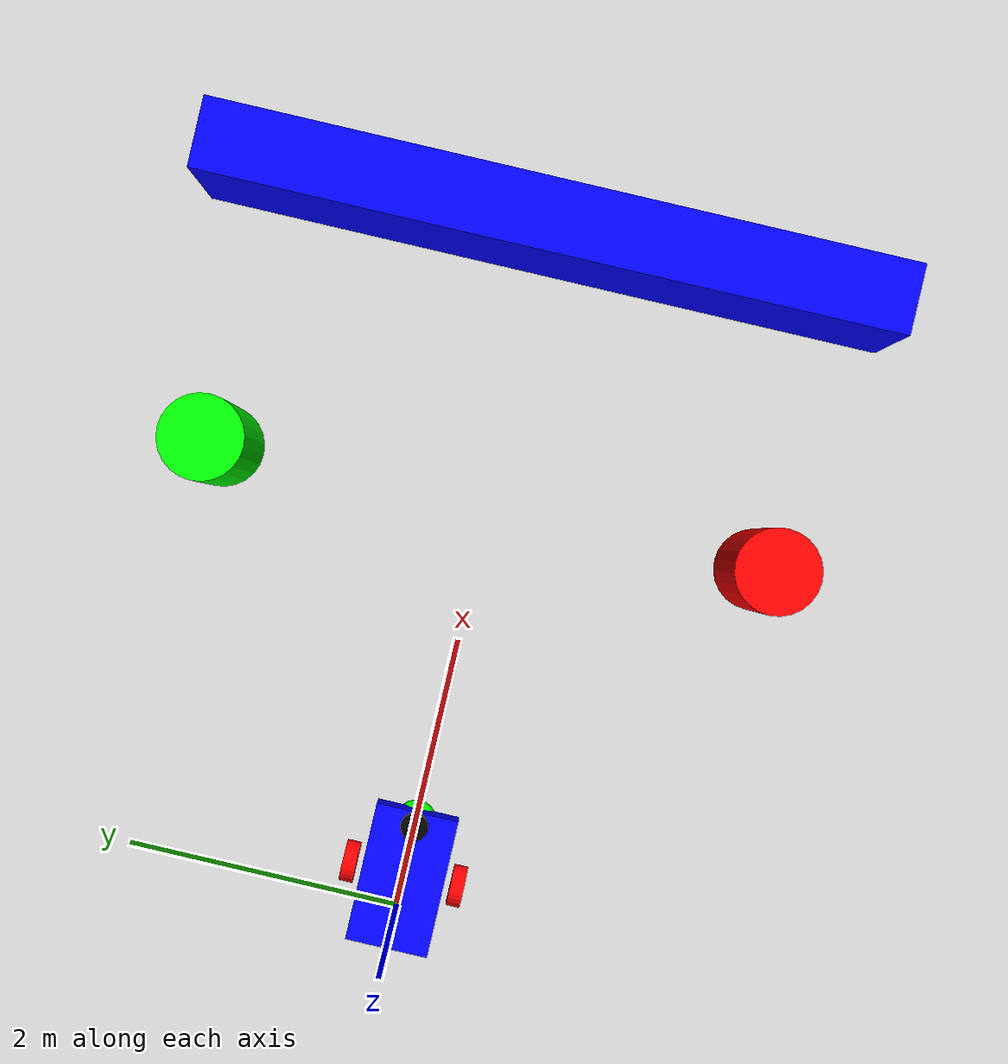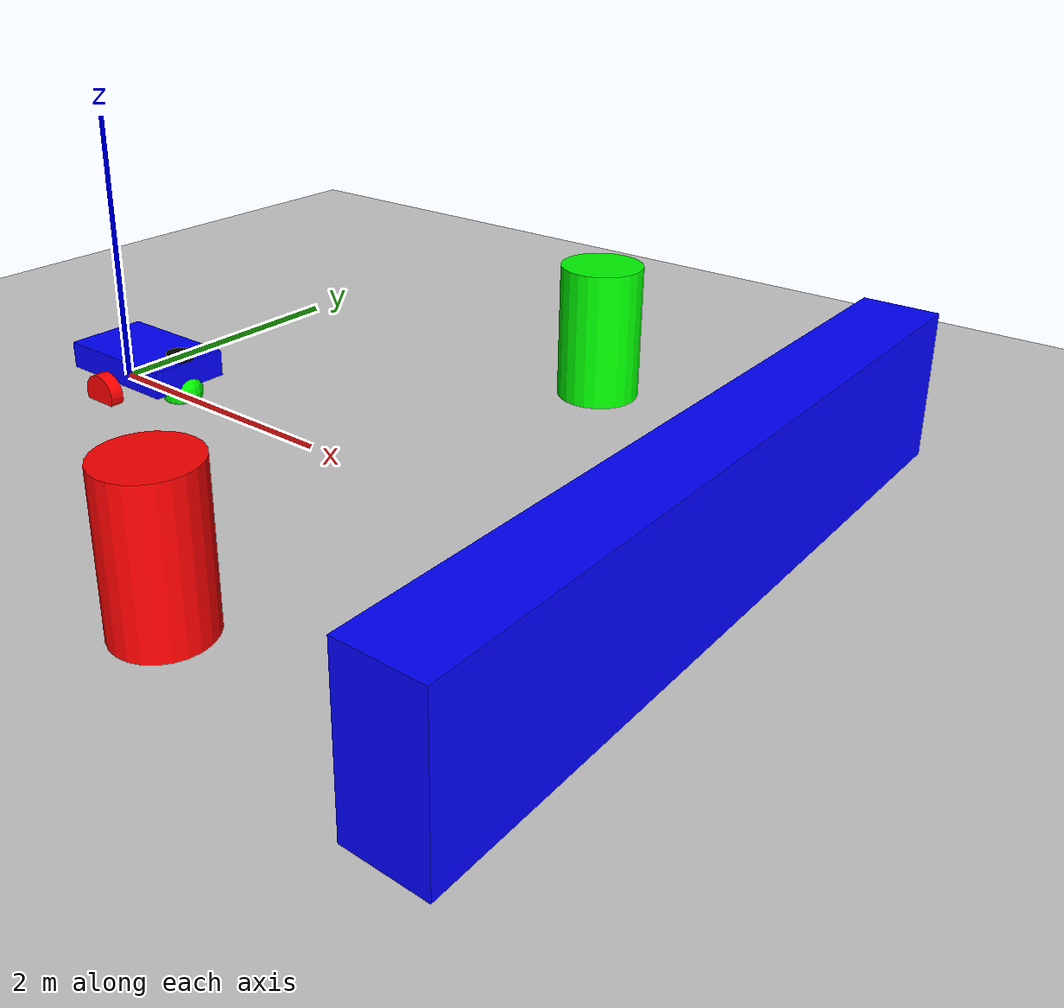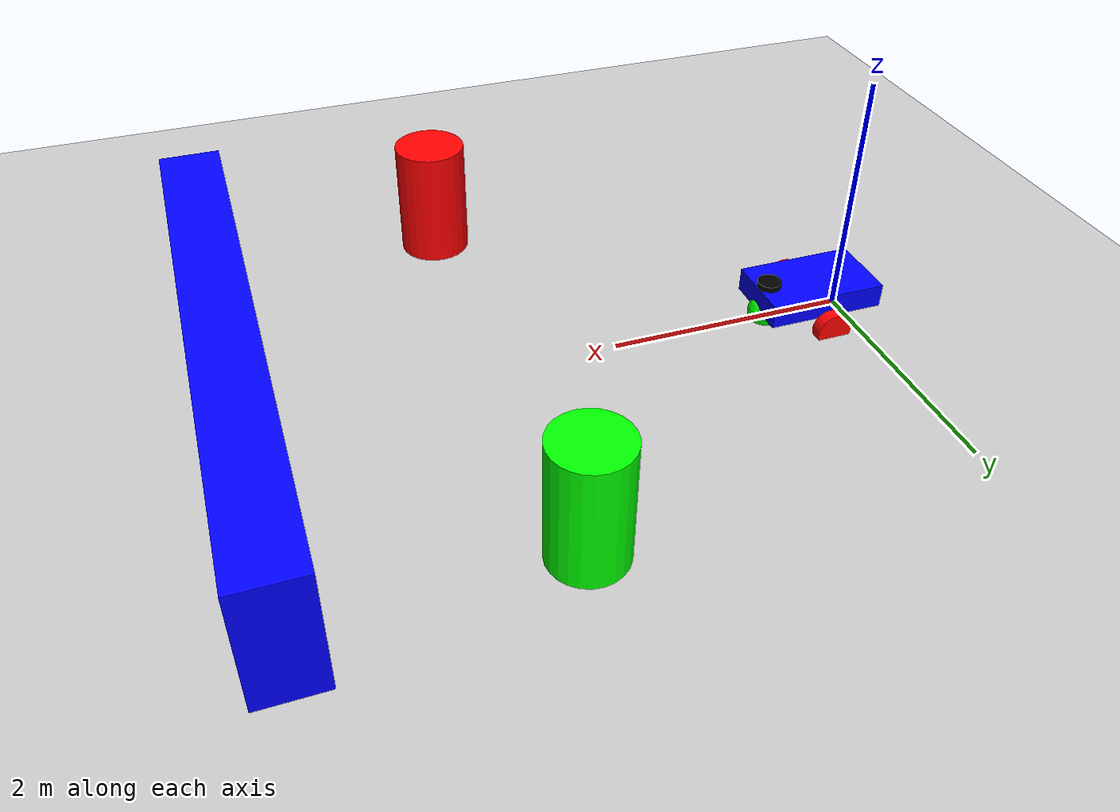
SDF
<?xml version="1.0"?>
<sdf version="1.10">
    <world name="car_world">
        <physics name="1ms" type="ignored">
            <max_step_size>0.001</max_step_size>
            <real_time_factor>1.0</real_time_factor>
        </physics>
        <plugin
            filename="gz-sim-physics-system"
            name="gz::sim::systems::Physics">
        </plugin>
        <plugin
            filename="gz-sim-user-commands-system"
            name="gz::sim::systems::UserCommands">
        </plugin>
        <plugin
            filename="gz-sim-scene-broadcaster-system"
            name="gz::sim::systems::SceneBroadcaster">
        </plugin>
        <plugin
            filename="gz-sim-imu-system"
            name="gz::sim::systems::Imu">
        </plugin>
        <plugin
            filename="gz-sim-sensors-system"
            name="gz::sim::systems::Sensors">
            <render_engine>ogre2</render_engine>
        </plugin>

        <light type="directional" name="sun">
            <cast_shadows>true</cast_shadows>
            <pose>0 0 10 0 0 0</pose>
            <diffuse>0.8 0.8 0.8 1</diffuse>
            <specular>0.2 0.2 0.2 1</specular>
            <attenuation>
                <range>1000</range>
                <constant>0.9</constant>
                <linear>0.01</linear>
                <quadratic>0.001</quadratic>
            </attenuation>
            <direction>-0.5 0.1 -0.9</direction>
        </light>

        <model name="ground_plane">
            <static>true</static>
            <link name="link">
                <collision name="collision">
                    <geometry>
                        <plane>
                            <normal>0 0 1</normal>
                        </plane>
                    </geometry>
                </collision>
                <visual name="visual">
                    <geometry>
                        <plane>
                            <normal>0 0 1</normal>
                            <size>100 100</size>
                        </plane>
                    </geometry>
                    <material>
                        <ambient>0.8 0.8 0.8 1</ambient>
                        <diffuse>0.8 0.8 0.8 1</diffuse>
                        <specular>0.8 0.8 0.8 1</specular>
                    </material>
                </visual>
            </link>
        </model>

        <model name='vehicle_blue' canonical_link='chassis'>
            <pose relative_to='world'>0 0 0 0 0 0</pose>
            <link name='chassis'>
                <pose relative_to='__model__'>0.25 0 0.2 0 0 0</pose>
                <inertial> <!--inertial
                    properties of the link mass, inertia matix-->
                    <mass>2.2879</mass>
                    <inertia>
                        <ixx>0.095329</ixx>
                        <ixy>0</ixy>
                        <ixz>0</ixz>
                        <iyy>0.381317</iyy>
                        <iyz>0</iyz>
                        <izz>0.476646</izz>
                    </inertia>
                </inertial>
                <visual name='visual'>
                    <geometry>
                        <box>
                            <size>1.0 0.6 0.2</size>
                        </box>
                    </geometry>
                    <!--let's
                    add color to our link-->
                    <material>
                        <ambient>0.0 0.0 1.0 1</ambient>
                        <diffuse>0.0 0.0 1.0 1</diffuse>
                        <specular>0.0 0.0 1.0 1</specular>
                    </material>
                </visual>
                <collision name='collision'>
                    <geometry>
                        <box>
                            <size>1.0 0.6 0.2</size>
                        </box>
                    </geometry>
                </collision>
                <sensor name="imu_sensor" type="imu">
                    <always_on>1</always_on>
                    <update_rate>1</update_rate>
                    <visualize>true</visualize>
                    <topic>imu</topic>
                </sensor>
            </link>

            <link name='left_wheel'>
                <pose relative_to="chassis">0 0.4 -0.15 -1.5707 0 0</pose>
                <inertial>
                    <mass>1</mass>
                    <inertia>
                        <ixx>0.043333</ixx>
                        <ixy>0</ixy>
                        <ixz>0</ixz>
                        <iyy>0.043333</iyy>
                        <iyz>0</iyz>
                        <izz>0.08</izz>
                    </inertia>
                </inertial>
                <visual name='visual'>
                    <geometry>
                        <cylinder>
                            <radius>0.15</radius>
                            <length>0.1</length>
                        </cylinder>
                    </geometry>
                    <material>
                        <ambient>1.0 0.0 0.0 1</ambient>
                        <diffuse>1.0 0.0 0.0 1</diffuse>
                        <specular>1.0 0.0 0.0 1</specular>
                    </material>
                </visual>
                <collision name='collision'>
                    <geometry>
                        <cylinder>
                            <radius>0.15</radius>
                            <length>0.1</length>
                        </cylinder>
                    </geometry>
                </collision>
            </link>

            <link name='right_wheel'>
                <pose relative_to="chassis">0 -0.4 -0.15 -1.5707 0 0</pose>
                <inertial>
                    <mass>1</mass>
                    <inertia>
                        <ixx>0.043333</ixx>
                        <ixy>0</ixy>
                        <ixz>0</ixz>
                        <iyy>0.043333</iyy>
                        <iyz>0</iyz>
                        <izz>0.08</izz>
                    </inertia>
                </inertial>
                <visual name='visual'>
                    <geometry>
                        <cylinder>
                            <radius>0.15</radius>
                            <length>0.1</length>
                        </cylinder>
                    </geometry>
                    <material>
                        <ambient>1.0 0.0 0.0 1</ambient>
                        <diffuse>1.0 0.0 0.0 1</diffuse>
                        <specular>1.0 0.0 0.0 1</specular>
                    </material>
                </visual>
                <collision name='collision'>
                    <geometry>
                        <cylinder>
                            <radius>0.15</radius>
                            <length>0.1</length>
                        </cylinder>
                    </geometry>
                </collision>
            </link>

            <frame name="front_caster_frame" attached_to='chassis'>
                <pose>0.4 0 -0.15 0 0 0</pose>
            </frame>

            <frame name="rear_caster_frame" attached_to='chassis'>
                <pose>-0.4 0 -0.15 0 0 0</pose>
            </frame>

            <frame name="lidar_frame" attached_to='chassis'>
                <pose>0.4 0 0.1 0 0 0</pose>
            </frame>

            <link name='lidar'>
                <pose relative_to='lidar_frame' />
                <inertial>
                    <mass>0.1</mass>
                    <inertia>
                        <ixx>0.000166667</ixx>
                        <ixy>0</ixy>
                        <ixz>0</ixz>
                        <iyy>0.000166667</iyy>
                        <iyz>0</iyz>
                        <izz>0.000166667</izz>
                    </inertia>
                </inertial>
                <visual name='visual'>
                    <geometry>
                        <cylinder>
                            <radius>0.1</radius>
                            <length>0.1</length>
                        </cylinder>
                    </geometry>
                    <material>
                        <ambient>0.0 0.0 0.0 1</ambient>
                        <diffuse>0.0 0.0 0.0 1</diffuse>
                        <specular>0.0 0.0 0.0 1</specular>
                    </material>
                </visual>
                <collision name='collision'>
                    <geometry>
                        <cylinder>
                            <radius>0.1</radius>
                            <length>0.1</length>
                        </cylinder>
                    </geometry>
                </collision>
                <sensor name='gpu_lidar' type='gpu_lidar'>
                    <pose relative_to='lidar_frame'>0 0 0 0 0 0</pose>
                    <topic>lidar</topic>
                    <update_rate>10</update_rate>
                    <frame_id>lidar_link</frame_id>
                    <ray>
                        <scan>
                            <horizontal>
                                <samples>640</samples>
                                <resolution>1</resolution>
                                <min_angle>-1.396263</min_angle>
                                <max_angle>1.396263</max_angle>
                            </horizontal>
                            <vertical>
                                <samples>1</samples>
                                <resolution>0.01</resolution>
                                <min_angle>0</min_angle>
                                <max_angle>0</max_angle>
                            </vertical>
                        </scan>
                        <range>
                            <min>0.08</min>
                            <max>10.0</max>
                            <resolution>0.01</resolution>
                        </range>
                    </ray>
                    <always_on>1</always_on>
                    <visualize>true</visualize>
                </sensor>
            </link>

            <link name='front_caster'>
                <pose relative_to='front_caster_frame' />
                <inertial>
                    <mass>1</mass>
                    <inertia>
                        <ixx>0.009</ixx>
                        <ixy>0</ixy>
                        <ixz>0</ixz>
                        <iyy>0.009</iyy>
                        <iyz>0</iyz>
                        <izz>0.009</izz>
                    </inertia>
                </inertial>
                <visual name='visual'>
                    <geometry>
                        <sphere>
                            <radius>0.15</radius>
                        </sphere>
                    </geometry>
                    <material>
                        <ambient>0.0 1 0.0 1</ambient>
                        <diffuse>0.0 1 0.0 1</diffuse>
                        <specular>0.0 1 0.0 1</specular>
                    </material>
                </visual>
                <collision name='collision'>
                    <geometry>
                        <sphere>
                            <radius>0.15</radius>
                        </sphere>
                    </geometry>
                </collision>
            </link>

            <link name='rear_caster'>
                <pose relative_to='rear_caster_frame' />
                <inertial>
                    <mass>1</mass>
                    <inertia>
                        <ixx>0.009</ixx>
                        <ixy>0</ixy>
                        <ixz>0</ixz>
                        <iyy>0.009</iyy>
                        <iyz>0</iyz>
                        <izz>0.009</izz>
                    </inertia>
                </inertial>
                <visual name='visual'>
                    <geometry>
                        <sphere>
                            <radius>0.15</radius>
                        </sphere>
                    </geometry>
                    <material>
                        <ambient>0.0 1 0.0 1</ambient>
                        <diffuse>0.0 1 0.0 1</diffuse>
                        <specular>0.0 1 0.0 1</specular>
                    </material>
                </visual>
                <collision name='collision'>
                    <geometry>
                        <sphere>
                            <radius>0.15</radius>
                        </sphere>
                    </geometry>
                </collision>
            </link>

            <joint name='left_wheel_joint' type='revolute'>
                <pose relative_to='left_wheel' />
                <parent>chassis</parent>
                <child>left_wheel</child>
                <axis>
                    <xyz expressed_in='__model__'>0 1 0</xyz>
                    <limit>
                        <lower>-1.79769e+308</lower>    <!--negative
                        infinity-->
                        <upper>1.79769e+308</upper>     <!--positive
                        infinity-->
                    </limit>
                </axis>
            </joint>

            <joint name='right_wheel_joint' type='revolute'>
                <pose relative_to='right_wheel' />
                <parent>chassis</parent>
                <child>right_wheel</child>
                <axis>
                    <xyz expressed_in='__model__'>0 1 0</xyz>
                    <limit>
                        <lower>-1.79769e+308</lower>    <!--negative
                        infinity-->
                        <upper>1.79769e+308</upper>     <!--positive
                        infinity-->
                    </limit>
                </axis>
            </joint>

            <joint name='front_caster_wheel' type='ball'>
                <parent>chassis</parent>
                <child>front_caster</child>
            </joint>

            <joint name='rear_caster_wheel' type='ball'>
                <parent>chassis</parent>
                <child>rear_caster</child>
            </joint>

            <joint name='lidar_joint' type='fixed'>
                <parent>chassis</parent>
                <child>lidar</child>
            </joint>

            <plugin
                filename="gz-sim-diff-drive-system"
                name="gz::sim::systems::DiffDrive">
                <left_joint>left_wheel_joint</left_joint>
                <right_joint>right_wheel_joint</right_joint>
                <wheel_separation>0.8</wheel_separation>
                <wheel_radius>0.15</wheel_radius>
                <odom_publish_frequency>50</odom_publish_frequency>
                <topic>cmd_vel</topic>
                <frame_id>odom</frame_id>
                <child_frame_id>base_link</child_frame_id>
            </plugin>
        </model>

        <model name='wall'>
            <static>true</static>
            <pose>5 0 0.5 0 0 0</pose>
            <link name='box'>
                <visual name='visual'>
                    <geometry>
                        <box>
                            <size>0.5 5.0 1.0</size>
                        </box>
                    </geometry>
                    <material>
                        <ambient>0.0 0.0 1.0 1</ambient>
                        <diffuse>0.0 0.0 1.0 1</diffuse>
                        <specular>0.0 0.0 1.0 1</specular>
                    </material>
                </visual>
                <collision name='collision'>
                    <geometry>
                        <box>
                            <size>0.5 5.0 1.0</size>
                        </box>
                    </geometry>
                </collision>
            </link>
        </model>

        <model name='cylinder_1'>
            <static>true</static>
            <pose>3 2 0.5 0 0 0</pose>
            <link name='cylinder'>
                <visual name='visual'>
                    <geometry>
                        <cylinder>
                            <radius>0.3</radius>
                            <length>1.0</length>
                        </cylinder>
                    </geometry>
                    <material>
                        <ambient>0.0 1.0 0.0 1</ambient>
                        <diffuse>0.0 1.0 0.0 1</diffuse>
                        <specular>0.0 1.0 0.0 1</specular>
                    </material>
                </visual>
                <collision name='collision'>
                    <geometry>
                        <cylinder>
                            <radius>0.3</radius>
                            <length>1.0</length>
                        </cylinder>
                    </geometry>
                </collision>
            </link>
        </model>

        <model name='cylinder_2'>
            <static>true</static>
            <pose>3 -2 0.5 0 0 0</pose>
            <link name='cylinder'>
                <visual name='visual'>
                    <geometry>
                        <cylinder>
                            <radius>0.3</radius>
                            <length>1.0</length>
                        </cylinder>
                    </geometry>
                    <material>
                        <ambient>1.0 0.0 0.0 1</ambient>
                        <diffuse>1.0 0.0 0.0 1</diffuse>
                        <specular>1.0 0.0 0.0 1</specular>
                    </material>
                </visual>
                <collision name='collision'>
                    <geometry>
                        <cylinder>
                            <radius>0.3</radius>
                            <length>1.0</length>
                        </cylinder>
                    </geometry>
                </collision>
            </link>
        </model>
    </world>
</sdf>
